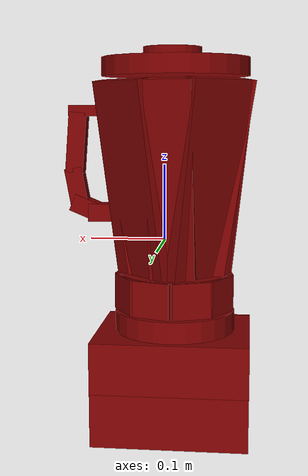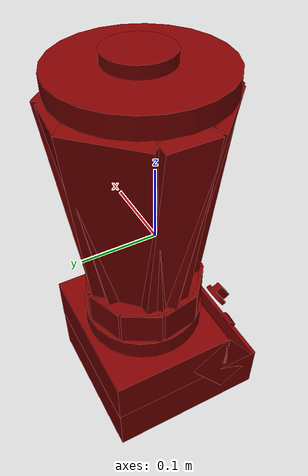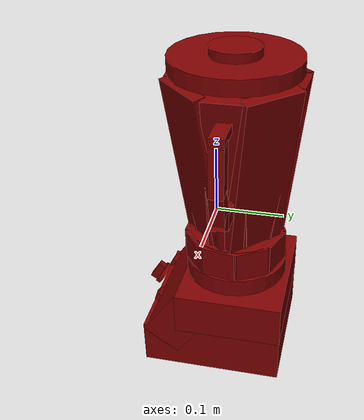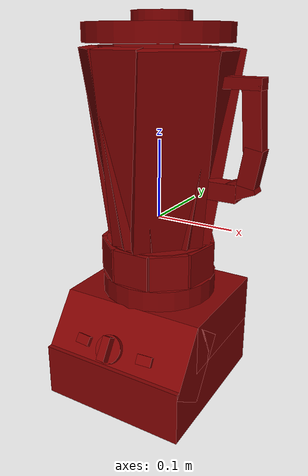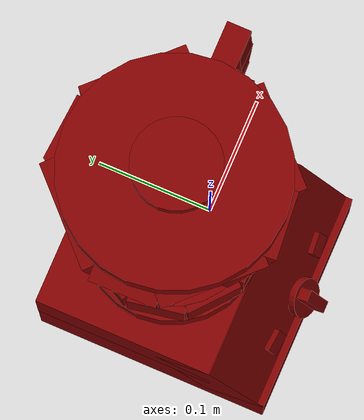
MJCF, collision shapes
<?xml version='1.0' encoding='UTF-8'?>
<mujoco model="model">
  <option timestep="0.002" gravity="0.0 0.0 -9.81"/>
  <compiler angle="radian"/>
  <asset>
    <mesh file="visuals/Blade001.obj" name="Blade001_vis"/>
    <mesh file="visuals/Body001.obj" name="Body001_vis"/>
    <mesh file="visuals/Button001.obj" name="Button001_vis"/>
    <mesh file="visuals/Button002.obj" name="Button002_vis"/>
    <mesh file="visuals/Jug001.obj" name="Jug001_vis"/>
    <mesh file="visuals/Jug001_Clear.obj" name="Jug001_Clear_vis"/>
    <mesh file="visuals/Knob001.obj" name="Knob001_vis"/>
    <mesh file="visuals/Lid001.obj" name="Lid001_vis"/>
    <texture file="visuals/T_BC001.png" name="Body001_material" type="2d"/>
    <material name="Body001_material" rgba="1 1 1 1.0" texture="Body001_material" shininess="0.1" specular="1"/>
    <texture file="visuals/T_BC001.png" name="Button001_material" type="2d"/>
    <material name="Button001_material" rgba="1 1 1 1.0" texture="Button001_material" shininess="0.5" specular="0.3103448502657381"/>
    <texture file="visuals/T_BC001.png" name="Button002_material" type="2d"/>
    <material name="Button002_material" rgba="1 1 1 1.0" texture="Button002_material" shininess="0.5" specular="0.3103448502657381"/>
    <texture file="visuals/T_BC001.png" name="Jug001_material" type="2d"/>
    <material name="Jug001_material" rgba="1 1 1 1.0" texture="Jug001_material" shininess="0.5" specular="0.3103448502657381"/>
    <texture file="visuals/T_BC001.png" name="Blade001_material" type="2d"/>
    <material name="Blade001_material" rgba="1 1 1 1.0" texture="Blade001_material" shininess="0.5" specular="0.3103448502657381"/>
    <texture file="visuals/T_BC001.png" name="Jug001_Clear_material" type="2d"/>
    <material name="Jug001_Clear_material" rgba="1 1 1 0.699999988079071" texture="Jug001_Clear_material" shininess="0.5" specular="0.3103448502657381"/>
    <texture file="visuals/T_BC001.png" name="Lid001_material" type="2d"/>
    <material name="Lid001_material" rgba="1 1 1 1.0" texture="Lid001_material" shininess="0.5" specular="0.3103448502657381"/>
    <texture file="visuals/T_BC001.png" name="Knob001_material" type="2d"/>
    <material name="Knob001_material" rgba="1 1 1 1.0" texture="Knob001_material" shininess="0.5" specular="0.3103448502657381"/>
  </asset>
  <default>
    <default class="visual">
      <geom conaffinity="0" contype="0" group="1" type="mesh"/>
    </default>
    <default class="collision">
      <geom group="0" rgba="0.5 0 0 0.5"/>
    </default>
    <default class="spawn">
      <geom group="0" rgba="1 1 1 0.5" contype="0" conaffinity="0"/>
      <site group="0" rgba="1 1 1 0.5"/>
    </default>
    <default class="region">
      <geom group="1" conaffinity="0" contype="0" rgba="0 1 0 0"/>
    </default>
  </default>
  <worldbody>
    <body>
      <body name="object">
        <geom mesh="Body001_vis" type="mesh" solimp="0.998 0.998 0.001" solref="0.001 1" friction="0.95 0.3 0.1" class="visual" material="Body001_material"/>
        <geom class="collision" type="box" pos="-0.01561236 -0.04847207 -0.16883487" size="0.09955644607543945 0.044624779373407364 0.032997120171785355" quat="0.8877590894699097 0.46030834317207336 0.0 0.0"/>
        <geom class="collision" type="box" pos="-0.01561236 0.00582542 -0.21375677" size="0.09955644607543945 0.10717274248600006 0.03572746366262436" quat="1.0 0.0 0.0 0.0"/>
        <geom class="collision" type="box" pos="-0.01561236 0.03171817 -0.14704540" size="0.09955644607543945 0.08168954402208328 0.032997116446495056" quat="1.0 0.0 0.0 0.0"/>
        <geom class="collision" type="cylinder" pos="-0.01604271 0.02733906 -0.10377229" size="0.07834652066230774 0.01722797192633152" quat="1.0 0.0 0.0 0.0"/>
        <body name="Button001">
          <joint axis="0.10692079365253448 0.8121441602706909 -0.5735763907432556" pos="-0.06169808 -0.08929481 -0.15561497" limited="true" name="Button001_joint" range="0.0 0.0015" type="slide" damping="1" frictionloss="1" armature=".01" stiffness="0.05" springref="-0.3"/>
          <geom mesh="Button001_vis" type="mesh" solimp="0.998 0.998 0.001" solref="0.001 1" friction="0.95 0.3 0.1" class="visual" material="Button001_material"/>
          <geom class="collision" type="box" pos="-0.06169808 -0.08929481 -0.15561497" size="0.010050386190414429 0.002920703962445259 0.00618571974337101" quat="0.95280921459198 -0.30041956901550293 0.013116598129272461 -0.041600536555051804"/>
        </body>
        <body name="Button002">
          <joint axis="-0.10692079365253448 0.8121441602706909 -0.5735763907432556" pos="0.03133892 -0.08929481 -0.15561497" limited="true" name="Button002_joint" range="0.0 0.0015" type="slide" damping="1" frictionloss="1" armature=".01" stiffness="0.05" springref="-0.3"/>
          <geom mesh="Button002_vis" type="mesh" solimp="0.998 0.998 0.001" solref="0.001 1" friction="0.95 0.3 0.1" class="visual" material="Button002_material"/>
          <geom class="collision" type="box" pos="0.03133892 -0.08929481 -0.15561497" size="0.010050386190414429 0.002920703962445259 0.00618571974337101" quat="0.95280921459198 -0.30041956901550293 -0.013116598129272461 0.041600536555051804"/>
        </body>
        <body name="Jug001">
          <joint axis="0.0 0.0 1.0" pos="-0.01632235 0.01660515 0.04915234" limited="true" name="Jug001_joint" range="0.0 0.05" type="slide" damping="1" frictionloss="1" armature=".01" stiffness="0.05"/>
          <geom mesh="Jug001_vis" type="mesh" solimp="0.998 0.998 0.001" solref="0.001 1" friction="0.95 0.3 0.1" class="visual" material="Jug001_material"/>
          <geom class="collision" type="box" pos="-0.06454355 -0.01959707 0.08393220" size="0.045629244297742844 0.008825822733342648 0.12603016197681427" quat="0.9212555885314941 0.06958147138357162 -0.028821583837270737 -0.38159650564193726"/>
          <geom class="collision" type="box" pos="-0.01508676 -0.04493246 -0.06207028" size="0.025154929608106613 0.0036438615061342716 0.02311084233224392" quat="1.0 0.0 0.0 0.0"/>
          <geom class="collision" type="box" pos="-0.06107003 0.07443510 0.08395385" size="0.045629244297742844 0.008825824595987797 0.12605208158493042" quat="0.3815966546535492 0.02882159873843193 -0.06958146393299103 -0.9212555289268494"/>
          <geom class="collision" type="box" pos="0.03290795 0.07090272 0.08342756" size="0.045629240572452545 0.008825824595987797 0.12551972270011902" quat="0.38159632682800293 0.02882157266139984 0.06958146393299103 0.9212556481361389"/>
          <geom class="collision" type="box" pos="0.02939798 -0.02298457 0.08310983" size="0.045629244297742844 0.008825824595987797 0.1251983642578125" quat="0.9212555289268494 0.06958146393299103 0.02882159687578678 0.3815966546535492"/>
          <geom class="collision" type="box" pos="-0.06061983 -0.02888154 -0.06207028" size="0.025154929608106613 0.0036438615061342716 0.023110834881663322" quat="0.9397565126419067 0.0 0.0 -0.3418445587158203"/>
          <geom class="collision" type="box" pos="-0.08513130 0.01232006 -0.06207028" size="0.025154927745461464 0.0036438617389649153 0.023110834881663322" quat="0.7679169774055481 0.0 0.0 -0.64054936170578"/>
          <geom class="collision" type="box" pos="-0.07741746 0.06015814 -0.06207028" size="0.025154927745461464 0.0036438615061342716 0.023110834881663322" quat="0.501535177230835 0.0 0.0 -0.8651372790336609"/>
          <geom class="collision" type="box" pos="-0.04175849 0.09134788 -0.06207028" size="0.025154929608106613 0.0036438617389649153 0.023110834881663322" quat="0.1822759509086609 0.0 0.0 -0.9832473993301392"/>
          <geom class="collision" type="box" pos="0.00749289 0.09234687 -0.06207028" size="0.025154929608106613 0.0036438615061342716 0.023110834881663322" quat="0.1721271127462387 0.0 0.0 0.9850747585296631"/>
          <geom class="collision" type="box" pos="0.04495862 0.06168171 -0.06207028" size="0.025154929608106613 0.0036438617389649153 0.023110834881663322" quat="0.4993874430656433 0.0 0.0 0.8663787841796875"/>
          <geom class="collision" type="box" pos="0.05384358 0.01394640 -0.06207028" size="0.02515493333339691 0.003643861971795559 0.023110834881663322" quat="0.7668055891990662 0.0 0.0 0.6418794393539429"/>
          <geom class="collision" type="box" pos="0.02979960 -0.02824716 -0.06207028" size="0.025154931470751762 0.0036438617389649153 0.023110834881663322" quat="0.9407618045806885 0.0 0.0 0.33906814455986023"/>
          <geom class="collision" type="box" pos="-0.09020515 0.02643144 0.08326086" size="0.02850382588803768 0.008825824595987797 0.1265544295310974" quat="0.709650456905365 0.05359915643930435 -0.05290931463241577 -0.700516939163208"/>
          <geom class="collision" type="box" pos="-0.01665352 0.09535334 0.08298609" size="0.02850382775068283 0.008825822733342648 0.12627652287483215" quat="0.03943026438355446 0.00297812232747674 0.07525552809238434 0.9963799715042114"/>
          <geom class="collision" type="box" pos="0.05136751 0.02487786 0.08221428" size="0.02850382775068283 0.008825823664665222 0.12549585103988647" quat="0.6996919512748718 0.0528470017015934 0.05366060510277748 0.7104638814926147"/>
          <geom class="collision" type="box" pos="-0.01955685 -0.04472887 0.08330193" size="0.02850382775068283 0.008825824595987797 0.12659597396850586" quat="0.9962204694747925 0.07524346560239792 0.003268356202170253 0.043272845447063446"/>
          <geom class="collision" type="box" pos="0.11158365 0.02701876 0.07379524" size="0.023755626752972603 0.010479923337697983 0.011317872442305088" quat="0.6425239443778992 0.0 0.7662656307220459 0.0"/>
          <geom class="collision" type="box" pos="0.09651056 0.02701876 0.17049715" size="0.023755624890327454 0.010479923337697983 0.00687967985868454" quat="1.0 0.0 0.0 0.0"/>
          <geom class="collision" type="box" pos="0.11109963 0.02701876 0.13012877" size="0.038404859602451324 0.010479923337697983 0.011317871510982513" quat="0.7342893481254578 0.0 0.6788366436958313 0.0"/>
          <geom class="collision" type="box" pos="0.10175942 0.02705240 0.04725354" size="0.016342977061867714 0.010479924269020557 0.011317871510982513" quat="0.1951066106557846 -1.9346716726431623e-05 0.9807310700416565 -0.00999981164932251"/>
          <geom class="collision" type="box" pos="0.07252684 0.02701976 0.03983370" size="0.023806843906641006 0.010791278444230556 0.011546020396053791" quat="1.0 0.0 0.0 0.0"/>
          <geom class="collision" type="cylinder" pos="-0.01604271 0.02733906 -0.06134024" size="0.07198860496282578 0.023390205577015877" quat="1.0 0.0 0.0 0.0"/>
          <body name="Blade001">
            <joint axis="0.0 0.0 1.0" pos="-0.01633500 0.02565838 -0.01908525" limited="false" name="Blade001_joint" range="0 360" type="hinge" damping="1" frictionloss="1" armature=".01" stiffness="0.05"/>
            <geom mesh="Blade001_vis" type="mesh" solimp="0.998 0.998 0.001" solref="0.001 1" friction="0.95 0.3 0.1" class="visual" material="Blade001_material"/>
            <geom class="collision" type="cylinder" pos="-0.01633884 0.02567838 -0.02440621" size="0.007670124527066946 0.010787472128868103" quat="1.0 0.0 0.0 0.0"/>
            <geom class="collision" type="box" pos="-0.02977562 0.02584977 -0.01657246" size="0.008050992153584957 0.005571782123297453 0.0005175308906473219" quat="0.979388952255249 0.0 -0.20198343694210052 0.0"/>
            <geom class="collision" type="box" pos="-0.04569198 0.02581310 -0.02350581" size="0.009483198635280132 0.003432794939726591 0.0005175308906473219" quat="0.9779711961746216 0.0 -0.20873989164829254 0.0"/>
            <geom class="collision" type="box" pos="0.01213597 0.02581310 -0.02348135" size="0.009483198635280132 0.003432794939726591 0.0005175308906473219" quat="-4.2748478534804235e-08 -0.9779711961746216 -9.124311084462988e-09 0.20873990654945374"/>
            <geom class="collision" type="box" pos="-0.00374394 0.02584977 -0.01642038" size="0.008050991222262383 0.005571782123297453 0.000517530832439661" quat="-4.281045207221723e-08 -0.979388952255249 -8.828975772701142e-09 0.20198342204093933"/>
            <geom class="collision" type="box" pos="-0.01606410 0.05551013 -0.00217943" size="0.009483198635280132 0.003432794939726591 0.0005175308906473219" quat="-0.6829333305358887 -0.18330860137939453 0.18330860137939453 -0.6829333305358887"/>
            <geom class="collision" type="box" pos="-0.01602743 0.04039862 -0.01072601" size="0.008050991222262383 0.005571782123297453 0.000517530832439661" quat="0.6841825246810913 0.17858953773975372 -0.17858952283859253 0.6841826438903809"/>
            <geom class="collision" type="box" pos="-0.01602743 0.01200211 -0.01072601" size="0.008050991222262383 0.005571782123297453 0.000517530832439661" quat="-0.17858955264091492 -0.6841825842857361 -0.6841825246810913 0.17858950793743134"/>
            <geom class="collision" type="box" pos="-0.01606410 -0.00310941 -0.00217943" size="0.009483198635280132 0.003432794939726591 0.0005175308906473219" quat="-0.18330861628055573 -0.6829333901405334 -0.6829333305358887 0.18330857157707214"/>
          </body>
          <body name="Jug001_Clear">
            <geom class="region" name="reg_int" type="box" pos="-0.016219795 0.025428230000000003 0.10080621000000001" size="0.032008365 0.03230699 0.09221367"/>
            <geom mesh="Jug001_Clear_vis" type="mesh" solimp="0.998 0.998 0.001" solref="0.001 1" friction="0.95 0.3 0.1" class="visual" material="Jug001_Clear_material"/>
            <geom class="collision" type="box" pos="-0.06454355 -0.01959707 0.08393220" size="0.045629244297742844 0.008825822733342648 0.12603016197681427" quat="0.9212555885314941 0.06958147138357162 -0.028821583837270737 -0.38159650564193726"/>
            <geom class="collision" type="box" pos="-0.01508676 -0.04493246 -0.06207028" size="0.025154929608106613 0.0036438615061342716 0.02311084233224392" quat="1.0 0.0 0.0 0.0"/>
            <geom class="collision" type="box" pos="-0.06107003 0.07443510 0.08395385" size="0.045629244297742844 0.008825824595987797 0.12605208158493042" quat="0.3815966546535492 0.02882159873843193 -0.06958146393299103 -0.9212555289268494"/>
            <geom class="collision" type="box" pos="0.03290795 0.07090272 0.08342756" size="0.045629240572452545 0.008825824595987797 0.12551972270011902" quat="0.38159632682800293 0.02882157266139984 0.06958146393299103 0.9212556481361389"/>
            <geom class="collision" type="box" pos="0.02939798 -0.02298457 0.08310983" size="0.045629244297742844 0.008825824595987797 0.1251983642578125" quat="0.9212555289268494 0.06958146393299103 0.02882159687578678 0.3815966546535492"/>
            <geom class="collision" type="box" pos="-0.06061983 -0.02888154 -0.06207028" size="0.025154929608106613 0.0036438615061342716 0.023110834881663322" quat="0.9397565126419067 0.0 0.0 -0.3418445587158203"/>
            <geom class="collision" type="box" pos="-0.08513130 0.01232006 -0.06207028" size="0.025154927745461464 0.0036438617389649153 0.023110834881663322" quat="0.7679169774055481 0.0 0.0 -0.64054936170578"/>
            <geom class="collision" type="box" pos="-0.07741746 0.06015814 -0.06207028" size="0.025154927745461464 0.0036438615061342716 0.023110834881663322" quat="0.501535177230835 0.0 0.0 -0.8651372790336609"/>
            <geom class="collision" type="box" pos="-0.04175849 0.09134788 -0.06207028" size="0.025154929608106613 0.0036438617389649153 0.023110834881663322" quat="0.1822759509086609 0.0 0.0 -0.9832473993301392"/>
            <geom class="collision" type="box" pos="0.00749289 0.09234687 -0.06207028" size="0.025154929608106613 0.0036438615061342716 0.023110834881663322" quat="0.1721271127462387 0.0 0.0 0.9850747585296631"/>
            <geom class="collision" type="box" pos="0.04495862 0.06168171 -0.06207028" size="0.025154929608106613 0.0036438617389649153 0.023110834881663322" quat="0.4993874430656433 0.0 0.0 0.8663787841796875"/>
            <geom class="collision" type="box" pos="0.05384358 0.01394640 -0.06207028" size="0.02515493333339691 0.003643861971795559 0.023110834881663322" quat="0.7668055891990662 0.0 0.0 0.6418794393539429"/>
            <geom class="collision" type="box" pos="0.02979960 -0.02824716 -0.06207028" size="0.025154931470751762 0.0036438617389649153 0.023110834881663322" quat="0.9407618045806885 0.0 0.0 0.33906814455986023"/>
            <geom class="collision" type="box" pos="-0.09020515 0.02643144 0.08326086" size="0.02850382588803768 0.008825824595987797 0.1265544295310974" quat="0.709650456905365 0.05359915643930435 -0.05290931463241577 -0.700516939163208"/>
            <geom class="collision" type="box" pos="-0.01665352 0.09535334 0.08298609" size="0.02850382775068283 0.008825822733342648 0.12627652287483215" quat="0.03943026438355446 0.00297812232747674 0.07525552809238434 0.9963799715042114"/>
            <geom class="collision" type="box" pos="0.05136751 0.02487786 0.08221428" size="0.02850382775068283 0.008825823664665222 0.12549585103988647" quat="0.6996919512748718 0.0528470017015934 0.05366060510277748 0.7104638814926147"/>
            <geom class="collision" type="box" pos="-0.01955685 -0.04472887 0.08330193" size="0.02850382775068283 0.008825824595987797 0.12659597396850586" quat="0.9962204694747925 0.07524346560239792 0.003268356202170253 0.043272845447063446"/>
            <geom class="collision" type="box" pos="0.11158365 0.02701876 0.07379524" size="0.023755626752972603 0.010479923337697983 0.011317872442305088" quat="0.6425239443778992 0.0 0.7662656307220459 0.0"/>
            <geom class="collision" type="box" pos="0.09651056 0.02701876 0.17049715" size="0.023755624890327454 0.010479923337697983 0.00687967985868454" quat="1.0 0.0 0.0 0.0"/>
            <geom class="collision" type="box" pos="0.11109963 0.02701876 0.13012877" size="0.038404859602451324 0.010479923337697983 0.011317871510982513" quat="0.7342893481254578 0.0 0.6788366436958313 0.0"/>
            <geom class="collision" type="box" pos="0.10175942 0.02705240 0.04725354" size="0.016342977061867714 0.010479924269020557 0.011317871510982513" quat="0.1951066106557846 -1.9346716726431623e-05 0.9807310700416565 -0.00999981164932251"/>
            <geom class="collision" type="box" pos="0.07252684 0.02701976 0.03983370" size="0.023806843906641006 0.010791278444230556 0.011546020396053791" quat="1.0 0.0 0.0 0.0"/>
          </body>
          <body name="Lid001">
            <joint axis="0.0 0.0 1.0" pos="-0.00404075 0.02486468 0.21410072" limited="true" name="Lid001_joint" range="0.0 0.05" type="slide" damping="1" frictionloss="1" armature=".01" stiffness="0.05"/>
            <geom mesh="Lid001_vis" type="mesh" solimp="0.998 0.998 0.001" solref="0.001 1" friction="0.95 0.3 0.1" class="visual" material="Lid001_material"/>
            <geom class="collision" type="cylinder" pos="-0.01620475 0.02425134 0.22491017" size="0.09406635165214539 0.01148100383579731" quat="1.0 0.0 0.0 0.0"/>
            <geom class="collision" type="cylinder" pos="-0.01221179 0.02425134 0.24195811" size="0.03719872981309891 0.007537921890616417" quat="1.0 0.0 0.0 0.0"/>
          </body>
        </body>
        <body name="Knob001">
          <joint axis="0.0 0.8386704921722412 -0.5446390509605408" pos="-0.01640366 -0.10047842 -0.14891277" limited="true" name="Knob001_joint" range="0.0 3.141592653589793" type="hinge" damping="0.05" frictionloss="0.1" armature="0.001"/>
          <geom mesh="Knob001_vis" type="mesh" solimp="0.998 0.998 0.001" solref="0.001 1" friction="0.95 0.3 0.1" class="visual" material="Knob001_material"/>
          <geom class="collision" type="cylinder" pos="-0.01638245 -0.09661132 -0.15119193" size="0.018016861751675606 0.0032423920929431915" quat="0.8788171410560608 0.4771587550640106 -1.5054356276220082e-16 -4.4593038816215255e-17" density="0.001"/>
          <geom class="collision" type="box" pos="-0.01634084 -0.10449058 -0.14611432" size="0.005413155537098646 0.005655909422785044 0.015304354019463062" quat="0.9588197469711304 -0.28401532769203186 5.934630009640784e-10 -1.7668519980418296e-09" density="0.001"/>
        </body>
        <geom class="region" name="reg_main" type="box" pos="-0.020306625000000002 0.003472349999999999 0.0" size="0.105475765 0.11412227 0.25050263"/>
      </body>
    </body>
  </worldbody>
  <actuator>
    <motor name="Button001_joint_actuator" joint="Button001_joint" gear="0.1"/>
    <motor name="Button002_joint_actuator" joint="Button002_joint" gear="0.1"/>
    <motor name="Jug001_joint_actuator" joint="Jug001_joint" gear="200"/>
    <motor name="Knob001_joint_actuator" joint="Knob001_joint" gear="10"/>
    <motor name="Blade001_joint_actuator" joint="Blade001_joint" gear="10"/>
    <motor name="Lid001_joint_actuator" joint="Lid001_joint" gear="50"/>
  </actuator>
</mujoco>
